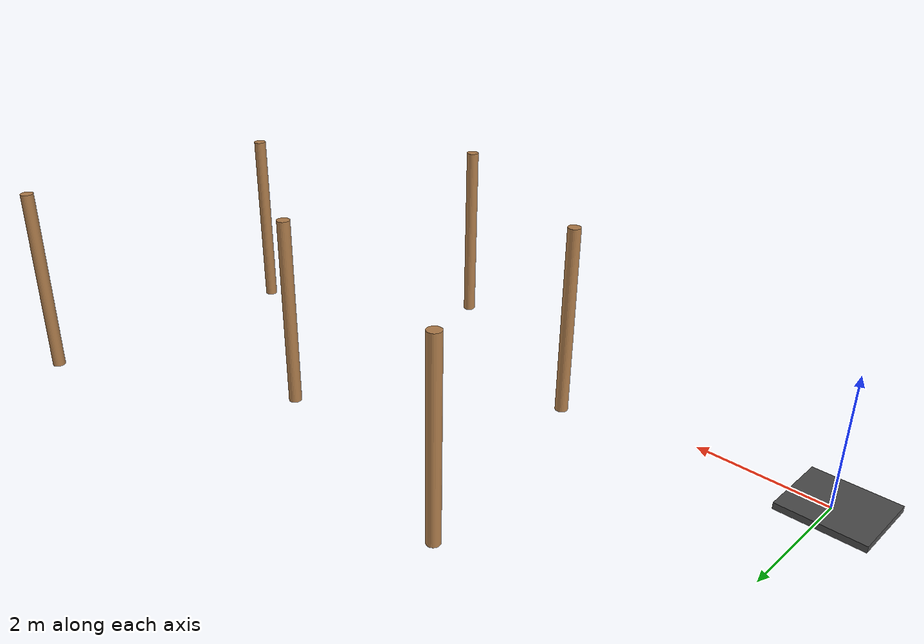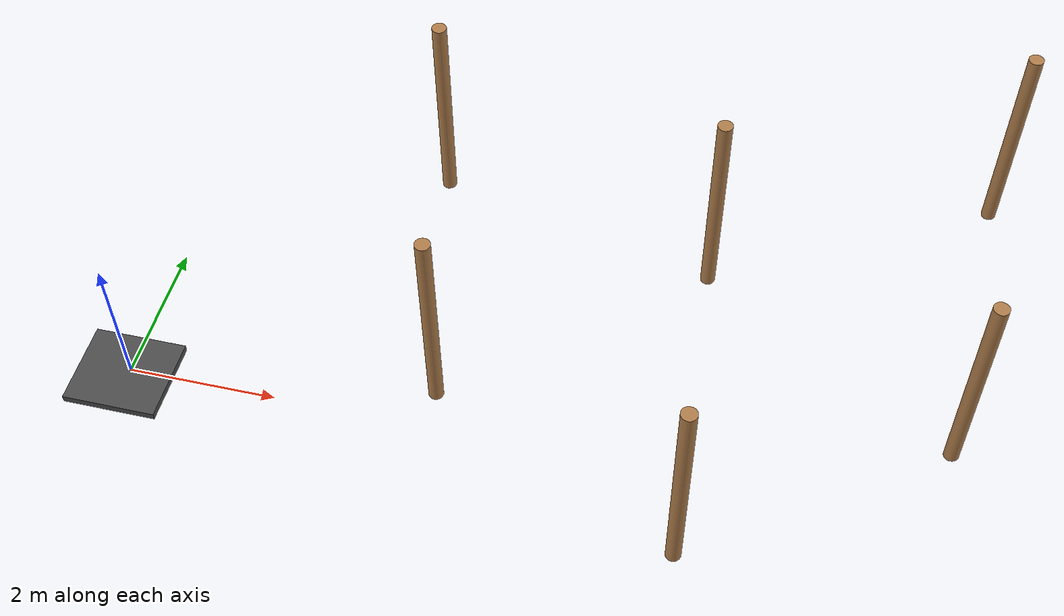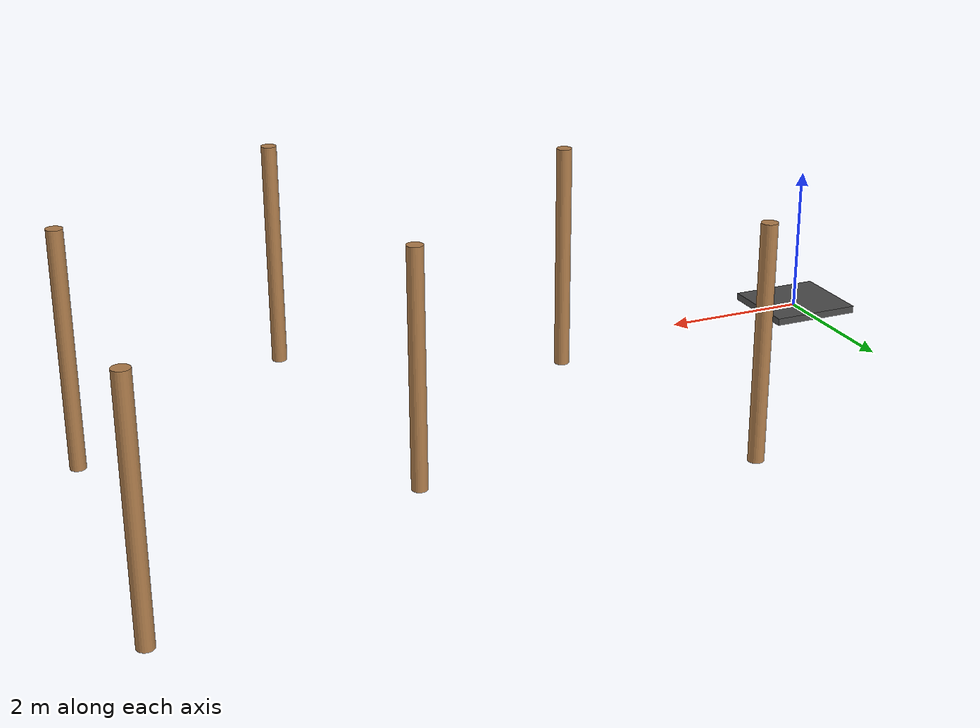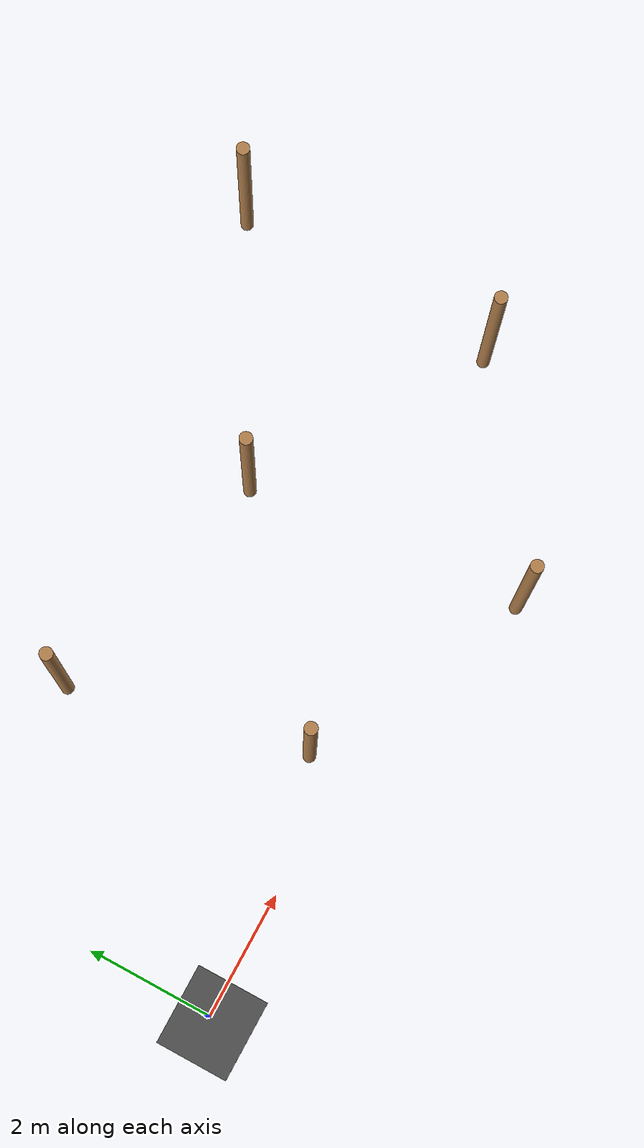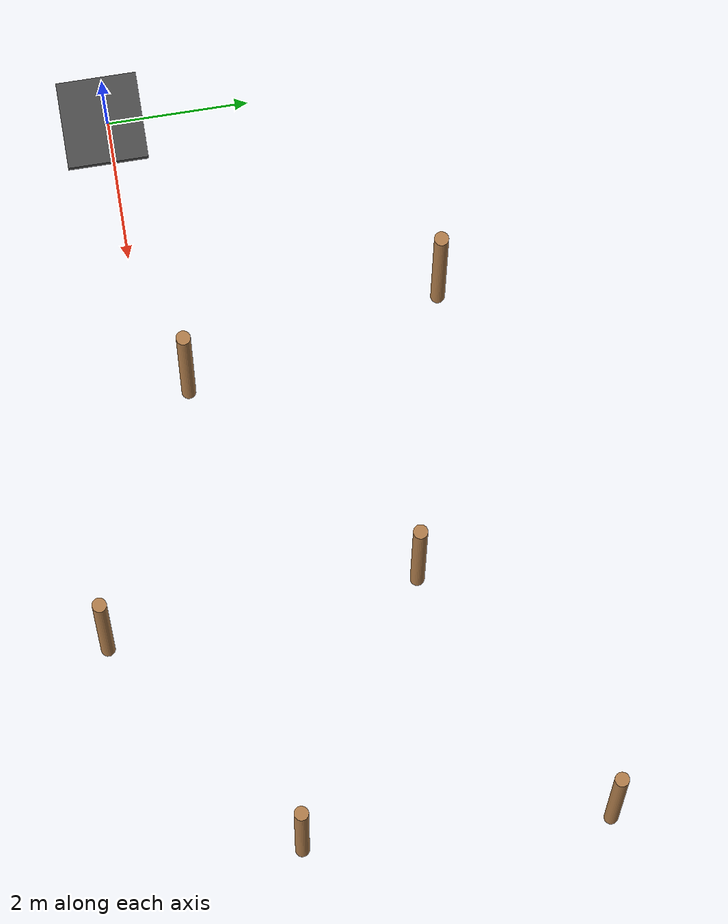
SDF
<sdf version="1.7">
 <world name="default">
  <model name="asphalt_plane">
   <pose>-0.054783 -0.070898 0 0 -0 0</pose>
   <static>1</static>
   <link name="link">
    <collision name="collision"><geometry><box><size>1.26307 1.14506 0.1</size></box></geometry></collision>
    <visual name="visual">
     <cast_shadows>0</cast_shadows>
     <geometry><box><size>1.26307 1.14506 0.1</size></box></geometry>
     <material>
      <script>
       <uri>model://asphalt_plane/materials/scripts</uri>
       <uri>model://asphalt_plane/materials/textures</uri>
       <name>vrc/asphalt</name>
      </script>
     </material>
    </visual>
   </link>
  </model>
  <model name="wooden_cylinder1_clone_30">
   <pose>4.04798 0.554378 9e-05 0 -0 0</pose>
   <link name="wooden_cylinder::link_0">
    <pose>0 0 1.5 0 -0 0</pose>
    <inertial>
     <mass>1</mass>
     <inertia><ixx>0.145833</ixx><ixy>0</ixy><ixz>0</ixz><iyy>0.145833</iyy><iyz>0</iyz><izz>0.125</izz></inertia>
    </inertial>
    <visual name="visual">
     <geometry><cylinder><radius>0.1</radius><length>3</length></cylinder></geometry>
     <material>
      <lighting>1</lighting>
      <script><uri>file://media/materials/scripts/gazebo.material</uri><name>Gazebo/Wood</name></script>
      <ambient>0.3 0.3 0.3 1</ambient>
      <diffuse>0.7 0.7 0.7 1</diffuse>
      <specular>0.01 0.01 0.01 1</specular>
      <emissive>0 0 0 1</emissive>
      <shader type="vertex"><normal_map>__default__</normal_map></shader>
     </material>
    </visual>
    <collision name="collision">
     <geometry><cylinder><radius>0.1</radius><length>3</length></cylinder></geometry>
     <surface>
      <friction>
       <ode><mu>1</mu><mu2>1</mu2><fdir1>0 0 0</fdir1><slip1>0</slip1><slip2>0</slip2></ode>
       <torsional>
        <coefficient>1</coefficient>
        <patch_radius>0</patch_radius>
        <surface_radius>0</surface_radius>
        <use_patch_radius>1</use_patch_radius>
        <ode><slip>0</slip></ode>
       </torsional>
      </friction>
      <bounce><restitution_coefficient>0</restitution_coefficient><threshold>1e+06</threshold></bounce>
      <contact>
       <collide_without_contact>0</collide_without_contact>
       <collide_without_contact_bitmask>1</collide_without_contact_bitmask>
       <collide_bitmask>1</collide_bitmask>
       <ode>
        <soft_cfm>0</soft_cfm>
        <soft_erp>0.2</soft_erp>
        <kp>1e+13</kp>
        <kd>1</kd>
        <max_vel>0.01</max_vel>
        <min_depth>0</min_depth>
       </ode>
       <bullet>
        <split_impulse>1</split_impulse>
        <split_impulse_penetration_threshold>-0.01</split_impulse_penetration_threshold>
        <soft_cfm>0</soft_cfm>
        <soft_erp>0.2</soft_erp>
        <kp>1e+13</kp>
        <kd>1</kd>
       </bullet>
      </contact>
     </surface>
    </collision>
   </link>
   <static>1</static>
  </model>
  <model name="wooden_cylinder1_clone_32">
   <pose>7.50706 -1.09907 3e-05 0 -0 0</pose>
   <link name="wooden_cylinder::link_0">
    <pose>0 0 1.5 0 -0 0</pose>
    <inertial>
     <mass>1</mass>
     <inertia><ixx>0.145833</ixx><ixy>0</ixy><ixz>0</ixz><iyy>0.145833</iyy><iyz>0</iyz><izz>0.125</izz></inertia>
    </inertial>
    <visual name="visual">
     <geometry><cylinder><radius>0.1</radius><length>3</length></cylinder></geometry>
     <material>
      <lighting>1</lighting>
      <script><uri>file://media/materials/scripts/gazebo.material</uri><name>Gazebo/Wood</name></script>
      <ambient>0.3 0.3 0.3 1</ambient>
      <diffuse>0.7 0.7 0.7 1</diffuse>
      <specular>0.01 0.01 0.01 1</specular>
      <emissive>0 0 0 1</emissive>
      <shader type="vertex"><normal_map>__default__</normal_map></shader>
     </material>
    </visual>
    <collision name="collision">
     <geometry><cylinder><radius>0.1</radius><length>3</length></cylinder></geometry>
     <surface>
      <friction>
       <ode><mu>1</mu><mu2>1</mu2><fdir1>0 0 0</fdir1><slip1>0</slip1><slip2>0</slip2></ode>
       <torsional>
        <coefficient>1</coefficient>
        <patch_radius>0</patch_radius>
        <surface_radius>0</surface_radius>
        <use_patch_radius>1</use_patch_radius>
        <ode><slip>0</slip></ode>
       </torsional>
      </friction>
      <bounce><restitution_coefficient>0</restitution_coefficient><threshold>1e+06</threshold></bounce>
      <contact>
       <collide_without_contact>0</collide_without_contact>
       <collide_without_contact_bitmask>1</collide_without_contact_bitmask>
       <collide_bitmask>1</collide_bitmask>
       <ode>
        <soft_cfm>0</soft_cfm>
        <soft_erp>0.2</soft_erp>
        <kp>1e+13</kp>
        <kd>1</kd>
        <max_vel>0.01</max_vel>
        <min_depth>0</min_depth>
       </ode>
       <bullet>
        <split_impulse>1</split_impulse>
        <split_impulse_penetration_threshold>-0.01</split_impulse_penetration_threshold>
        <soft_cfm>0</soft_cfm>
        <soft_erp>0.2</soft_erp>
        <kp>1e+13</kp>
        <kd>1</kd>
       </bullet>
      </contact>
     </surface>
    </collision>
   </link>
   <static>1</static>
  </model>
  <model name="wooden_cylinder1_clone_35">
   <pose>3.22241 4.21506 2e-05 0 -0 0</pose>
   <link name="wooden_cylinder::link_0">
    <pose>0 0 1.5 0 -0 0</pose>
    <inertial>
     <mass>1</mass>
     <inertia><ixx>0.145833</ixx><ixy>0</ixy><ixz>0</ixz><iyy>0.145833</iyy><iyz>0</iyz><izz>0.125</izz></inertia>
    </inertial>
    <visual name="visual">
     <geometry><cylinder><radius>0.1</radius><length>3</length></cylinder></geometry>
     <material>
      <lighting>1</lighting>
      <script><uri>file://media/materials/scripts/gazebo.material</uri><name>Gazebo/Wood</name></script>
      <ambient>0.3 0.3 0.3 1</ambient>
      <diffuse>0.7 0.7 0.7 1</diffuse>
      <specular>0.01 0.01 0.01 1</specular>
      <emissive>0 0 0 1</emissive>
      <shader type="vertex"><normal_map>__default__</normal_map></shader>
     </material>
    </visual>
    <collision name="collision">
     <geometry><cylinder><radius>0.1</radius><length>3</length></cylinder></geometry>
     <surface>
      <friction>
       <ode><mu>1</mu><mu2>1</mu2><fdir1>0 0 0</fdir1><slip1>0</slip1><slip2>0</slip2></ode>
       <torsional>
        <coefficient>1</coefficient>
        <patch_radius>0</patch_radius>
        <surface_radius>0</surface_radius>
        <use_patch_radius>1</use_patch_radius>
        <ode><slip>0</slip></ode>
       </torsional>
      </friction>
      <bounce><restitution_coefficient>0</restitution_coefficient><threshold>1e+06</threshold></bounce>
      <contact>
       <collide_without_contact>0</collide_without_contact>
       <collide_without_contact_bitmask>1</collide_without_contact_bitmask>
       <collide_bitmask>1</collide_bitmask>
       <ode>
        <soft_cfm>0</soft_cfm>
        <soft_erp>0.2</soft_erp>
        <kp>1e+13</kp>
        <kd>1</kd>
        <max_vel>0.01</max_vel>
        <min_depth>0</min_depth>
       </ode>
       <bullet>
        <split_impulse>1</split_impulse>
        <split_impulse_penetration_threshold>-0.01</split_impulse_penetration_threshold>
        <soft_cfm>0</soft_cfm>
        <soft_erp>0.2</soft_erp>
        <kp>1e+13</kp>
        <kd>1</kd>
       </bullet>
      </contact>
     </surface>
    </collision>
   </link>
   <static>1</static>
  </model>
  <model name="wooden_cylinder1_clone_37">
   <pose>7.18539 3.28749 1e-05 0 -0 0</pose>
   <link name="wooden_cylinder::link_0">
    <pose>0 0 1.5 0 -0 0</pose>
    <inertial>
     <mass>1</mass>
     <inertia><ixx>0.145833</ixx><ixy>0</ixy><ixz>0</ixz><iyy>0.145833</iyy><iyz>0</iyz><izz>0.125</izz></inertia>
    </inertial>
    <visual name="visual">
     <geometry><cylinder><radius>0.1</radius><length>3</length></cylinder></geometry>
     <material>
      <lighting>1</lighting>
      <script><uri>file://media/materials/scripts/gazebo.material</uri><name>Gazebo/Wood</name></script>
      <ambient>0.3 0.3 0.3 1</ambient>
      <diffuse>0.7 0.7 0.7 1</diffuse>
      <specular>0.01 0.01 0.01 1</specular>
      <emissive>0 0 0 1</emissive>
      <shader type="vertex"><normal_map>__default__</normal_map></shader>
     </material>
    </visual>
    <collision name="collision">
     <geometry><cylinder><radius>0.1</radius><length>3</length></cylinder></geometry>
     <surface>
      <friction>
       <ode><mu>1</mu><mu2>1</mu2><fdir1>0 0 0</fdir1><slip1>0</slip1><slip2>0</slip2></ode>
       <torsional>
        <coefficient>1</coefficient>
        <patch_radius>0</patch_radius>
        <surface_radius>0</surface_radius>
        <use_patch_radius>1</use_patch_radius>
        <ode><slip>0</slip></ode>
       </torsional>
      </friction>
      <bounce><restitution_coefficient>0</restitution_coefficient><threshold>1e+06</threshold></bounce>
      <contact>
       <collide_without_contact>0</collide_without_contact>
       <collide_without_contact_bitmask>1</collide_without_contact_bitmask>
       <collide_bitmask>1</collide_bitmask>
       <ode>
        <soft_cfm>0</soft_cfm>
        <soft_erp>0.2</soft_erp>
        <kp>1e+13</kp>
        <kd>1</kd>
        <max_vel>0.01</max_vel>
        <min_depth>0</min_depth>
       </ode>
       <bullet>
        <split_impulse>1</split_impulse>
        <split_impulse_penetration_threshold>-0.01</split_impulse_penetration_threshold>
        <soft_cfm>0</soft_cfm>
        <soft_erp>0.2</soft_erp>
        <kp>1e+13</kp>
        <kd>1</kd>
       </bullet>
      </contact>
     </surface>
    </collision>
   </link>
   <static>1</static>
  </model>
  <model name="wooden_cylinder1_clone_43">
   <pose>10.6957 1.12593 -4e-05 0 -0 0</pose>
   <link name="wooden_cylinder::link_0">
    <pose>0 0 1.5 0 -0 0</pose>
    <inertial>
     <mass>1</mass>
     <inertia><ixx>0.145833</ixx><ixy>0</ixy><ixz>0</ixz><iyy>0.145833</iyy><iyz>0</iyz><izz>0.125</izz></inertia>
    </inertial>
    <visual name="visual">
     <geometry><cylinder><radius>0.1</radius><length>3</length></cylinder></geometry>
     <material>
      <lighting>1</lighting>
      <script><uri>file://media/materials/scripts/gazebo.material</uri><name>Gazebo/Wood</name></script>
      <ambient>0.3 0.3 0.3 1</ambient>
      <diffuse>0.7 0.7 0.7 1</diffuse>
      <specular>0.01 0.01 0.01 1</specular>
      <emissive>0 0 0 1</emissive>
      <shader type="vertex"><normal_map>__default__</normal_map></shader>
     </material>
    </visual>
    <collision name="collision">
     <geometry><cylinder><radius>0.1</radius><length>3</length></cylinder></geometry>
     <surface>
      <friction>
       <ode><mu>1</mu><mu2>1</mu2><fdir1>0 0 0</fdir1><slip1>0</slip1><slip2>0</slip2></ode>
       <torsional>
        <coefficient>1</coefficient>
        <patch_radius>0</patch_radius>
        <surface_radius>0</surface_radius>
        <use_patch_radius>1</use_patch_radius>
        <ode><slip>0</slip></ode>
       </torsional>
      </friction>
      <bounce><restitution_coefficient>0</restitution_coefficient><threshold>1e+06</threshold></bounce>
      <contact>
       <collide_without_contact>0</collide_without_contact>
       <collide_without_contact_bitmask>1</collide_without_contact_bitmask>
       <collide_bitmask>1</collide_bitmask>
       <ode>
        <soft_cfm>0</soft_cfm>
        <soft_erp>0.2</soft_erp>
        <kp>1e+13</kp>
        <kd>1</kd>
        <max_vel>0.01</max_vel>
        <min_depth>0</min_depth>
       </ode>
       <bullet>
        <split_impulse>1</split_impulse>
        <split_impulse_penetration_threshold>-0.01</split_impulse_penetration_threshold>
        <soft_cfm>0</soft_cfm>
        <soft_erp>0.2</soft_erp>
        <kp>1e+13</kp>
        <kd>1</kd>
       </bullet>
      </contact>
     </surface>
    </collision>
   </link>
   <static>1</static>
  </model>
  <model name="wooden_cylinder1_clone_48">
   <pose>10.9079 5.38565 -0.00013 0 -0 0</pose>
   <link name="wooden_cylinder::link_0">
    <pose>0 0 1.5 0 -0 0</pose>
    <inertial>
     <mass>1</mass>
     <inertia><ixx>0.145833</ixx><ixy>0</ixy><ixz>0</ixz><iyy>0.145833</iyy><iyz>0</iyz><izz>0.125</izz></inertia>
    </inertial>
    <visual name="visual">
     <geometry><cylinder><radius>0.1</radius><length>3</length></cylinder></geometry>
     <material>
      <lighting>1</lighting>
      <script><uri>file://media/materials/scripts/gazebo.material</uri><name>Gazebo/Wood</name></script>
      <ambient>0.3 0.3 0.3 1</ambient>
      <diffuse>0.7 0.7 0.7 1</diffuse>
      <specular>0.01 0.01 0.01 1</specular>
      <emissive>0 0 0 1</emissive>
      <shader type="vertex"><normal_map>__default__</normal_map></shader>
     </material>
    </visual>
    <collision name="collision">
     <geometry><cylinder><radius>0.1</radius><length>3</length></cylinder></geometry>
     <surface>
      <friction>
       <ode><mu>1</mu><mu2>1</mu2><fdir1>0 0 0</fdir1><slip1>0</slip1><slip2>0</slip2></ode>
       <torsional>
        <coefficient>1</coefficient>
        <patch_radius>0</patch_radius>
        <surface_radius>0</surface_radius>
        <use_patch_radius>1</use_patch_radius>
        <ode><slip>0</slip></ode>
       </torsional>
      </friction>
      <bounce><restitution_coefficient>0</restitution_coefficient><threshold>1e+06</threshold></bounce>
      <contact>
       <collide_without_contact>0</collide_without_contact>
       <collide_without_contact_bitmask>1</collide_without_contact_bitmask>
       <collide_bitmask>1</collide_bitmask>
       <ode>
        <soft_cfm>0</soft_cfm>
        <soft_erp>0.2</soft_erp>
        <kp>1e+13</kp>
        <kd>1</kd>
        <max_vel>0.01</max_vel>
        <min_depth>0</min_depth>
       </ode>
       <bullet>
        <split_impulse>1</split_impulse>
        <split_impulse_penetration_threshold>-0.01</split_impulse_penetration_threshold>
        <soft_cfm>0</soft_cfm>
        <soft_erp>0.2</soft_erp>
        <kp>1e+13</kp>
        <kd>1</kd>
       </bullet>
      </contact>
     </surface>
    </collision>
   </link>
   <static>1</static>
  </model>
 </world>
</sdf>
